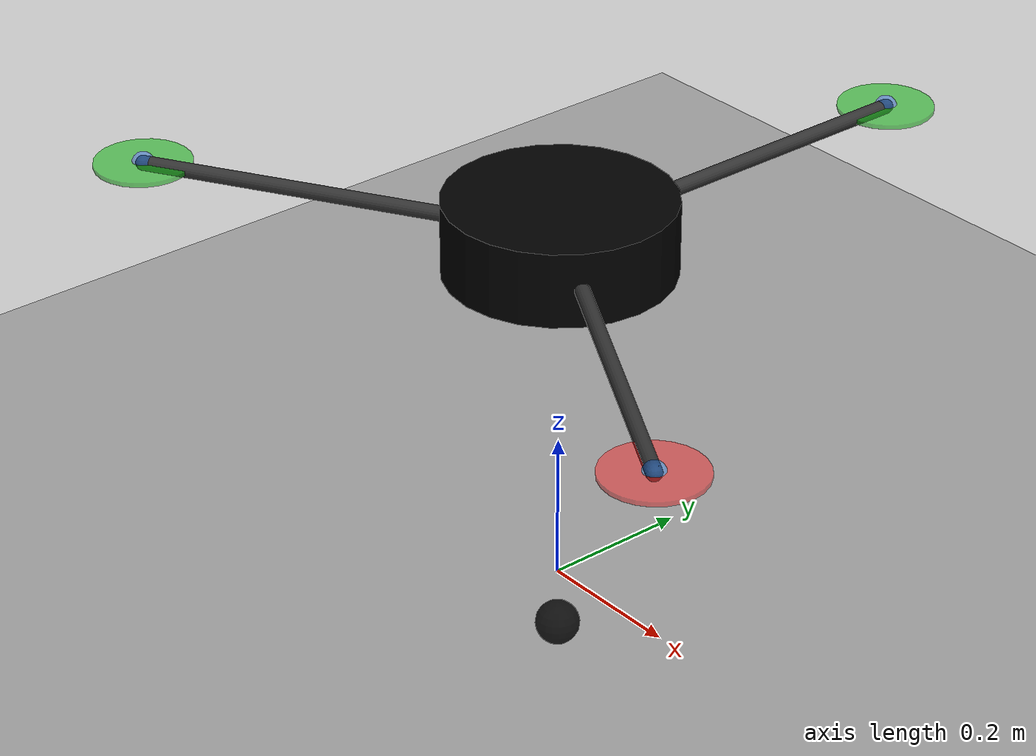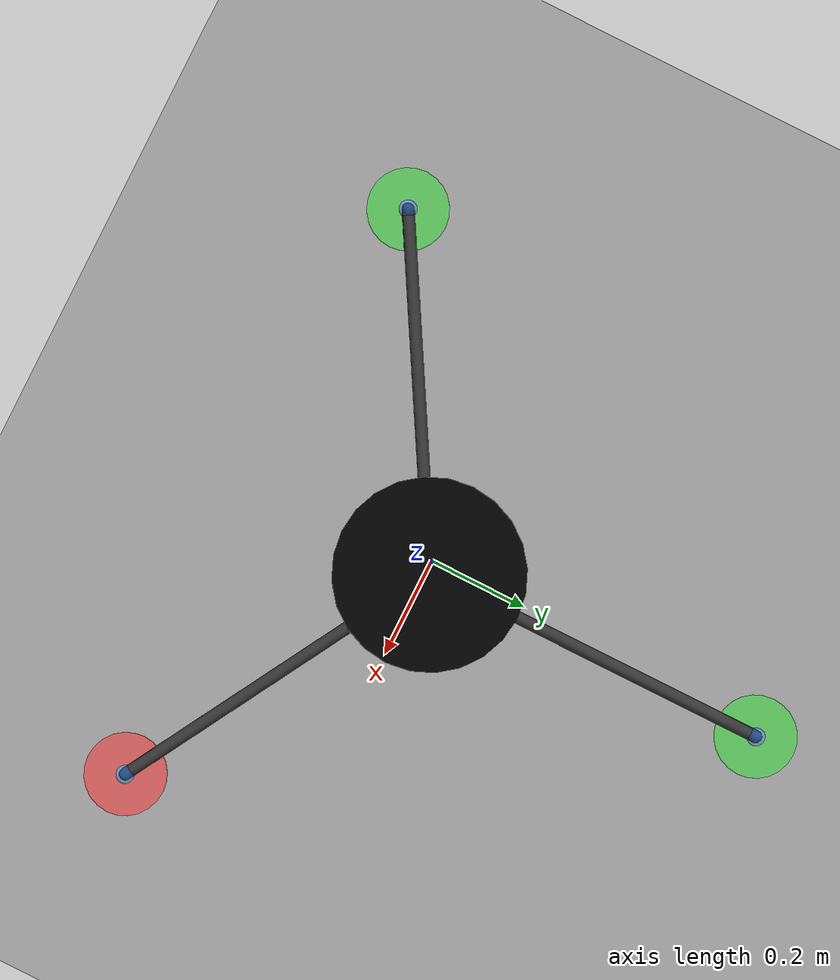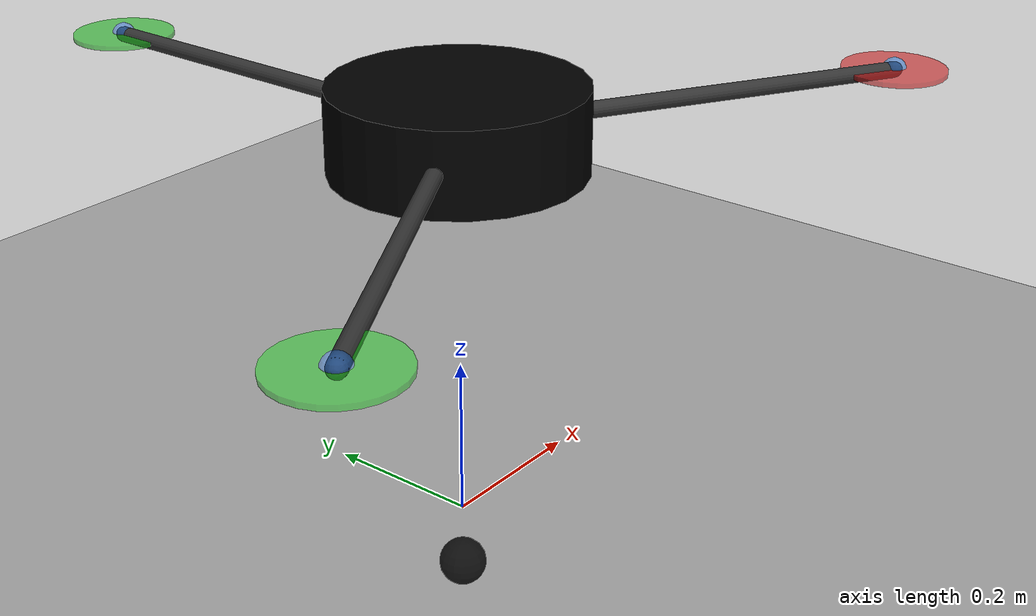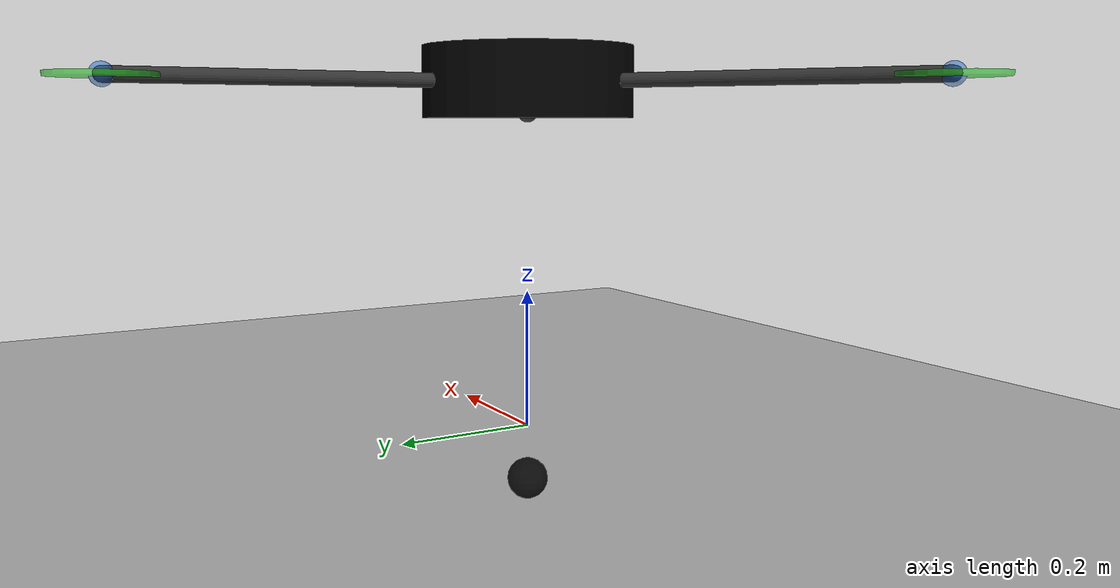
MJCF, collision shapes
<!-- Hopper Serial Equivalent Leg Model for MuJoCo -->
<mujoco model="hopper_serial">
  <compiler angle="radian" meshdir="meshes"/>

  <option timestep="0.001" gravity="0 0 -9.81" integrator="RK4">
    <flag warmstart="enable"/>
  </option>

  <visual>
    <global offwidth="2048" offheight="2048"/>
  </visual>

  <default>
    <joint armature="0.01" damping="0.1" limited="true"/>
    <geom contype="1" conaffinity="1" friction="1.0 0.005 0.0001"/>
    <motor ctrllimited="true"/>
  </default>

  <asset>
    <!-- 背景和地面纹理 -->
    <texture type="skybox" builtin="gradient" rgb1="0.3 0.5 0.7" rgb2="0 0 0" width="512" height="512"/>
    <texture name="plane_tex" type="2d" builtin="checker" rgb1="0.2 0.2 0.2" rgb2="0.3 0.3 0.3" width="512" height="512"/>
    <material name="plane_mat" texture="plane_tex" texrepeat="5 5" reflectance="0.1"/>

    <!-- 机器人材质 -->
    <material name="body_mat" rgba="0.9 0.9 0.9 1"/>
    <material name="leg_mat" rgba="0.7 0.7 0.7 1"/>
    <material name="foot_mat" rgba="0.8 0.2 0.2 1"/>
    <material name="prop_arm_mat" rgba="0.2 0.2 0.2 1"/>
    <material name="prop_disc_cw_mat" rgba="0.85 0.1 0.1 0.6"/>
    <material name="prop_disc_ccw_mat" rgba="0.1 0.75 0.1 0.6"/>

    <!-- 原始 STL mesh 文件 -->
    <mesh name="base_link_mesh" file="base_link.STL"/>
    <mesh name="leg_link_mesh" file="Leg_Link.STL"/>
    <mesh name="foot_link_mesh" file="Foot_Link.STL"/>
  </asset>

  <worldbody>
    <!-- Ground plane -->
    <geom name="ground" type="plane" size="10 10 0.1" material="plane_mat"/>

    <!-- Robot base (floating) -->
    <!-- 初始高度 0.5m，让机器人能够触地开始跳跃 -->
    <body name="base_link" pos="0 0 0.5">
      <freejoint name="root"/>

      <!-- IMU site on base -->
      <site name="imu_site" pos="0 0 0" size="0.01"/>

      <!-- Base inertial properties (exactly from Hopper URDF) -->
      <inertial pos="-0.000332 0.000002 -0.023132" mass="2.50681195566096"
                fullinertia="0.0233667280091328 0.023367930568101 0.0460329566307884 2.39896564964331e-05 2.13732387800745e-06 3.38974687864798e-08"/>

      <!-- Base visual (使用原始 STL mesh) -->
      <geom name="base_visual" type="mesh" mesh="base_link_mesh"
            material="body_mat" contype="0" conaffinity="0"/>

      <!-- Base collision (简化为圆柱体，提高仿真稳定性) -->
      <geom name="base_collision" type="cylinder" size="0.15 0.05" pos="0 0 0"
            rgba="0 0 0 0"/>

      <!-- ========== Propeller arms (visual only) ========== -->
      <!-- 三个对称布置的扶臂，与 Hopper4 中的三旋翼等效 -->
      <geom name="prop_arm_1" type="capsule" fromto="0 0 0 0.000317 0.569451 0"
            size="0.01" material="prop_arm_mat" contype="0" conaffinity="0"/>
      <geom name="prop_arm_2" type="capsule" fromto="0 0 0 0.493317 -0.284451 0"
            size="0.01" material="prop_arm_mat" contype="0" conaffinity="0"/>
      <geom name="prop_arm_3" type="capsule" fromto="0 0 0 -0.493634 -0.285 0"
            size="0.01" material="prop_arm_mat" contype="0" conaffinity="0"/>

      <!-- ========== Propeller discs (visual placeholders) ========== -->
      <geom name="prop_disc_1" type="cylinder" size="0.065 0.003"
            pos="0.000317 0.569451 0" material="prop_disc_ccw_mat" contype="0" conaffinity="0"/>
      <geom name="prop_disc_2" type="cylinder" size="0.065 0.003"
            pos="0.493317 -0.284451 0" material="prop_disc_cw_mat" contype="0" conaffinity="0"/>
      <geom name="prop_disc_3" type="cylinder" size="0.065 0.003"
            pos="-0.493634 -0.285 0" material="prop_disc_ccw_mat" contype="0" conaffinity="0"/>

      <!-- Propeller thrust reference sites -->
      <site name="prop_site_1" pos="0.000317 0.569451 0" size="0.015" rgba="0.1 0.4 0.8 0.5"/>
      <site name="prop_site_2" pos="0.493317 -0.284451 0" size="0.015" rgba="0.1 0.4 0.8 0.5"/>
      <site name="prop_site_3" pos="-0.493634 -0.285 0" size="0.015" rgba="0.1 0.4 0.8 0.5"/>

      <!-- Hip joint: Roll (around X axis) -->
      <!-- 从 URDF: origin xyz="0 0 -0.0416" -->
      <body name="base_roll_link" pos="0 0 -0.0416">
        <inertial pos="0 0 0" mass="0.06" diaginertia="9.6e-6 9.6e-6 9.6e-6"/>
        <joint name="Leg_Joint_Roll" type="hinge" axis="1 0 0"
               range="-1.0 1.0" damping="0.5"/>
        <geom name="roll_geom" type="sphere" size="0.015" rgba="0.3 0.3 0.3 1"/>

        <!-- Pitch joint (around Y axis) -->
        <body name="roll_pitch_link" pos="0 0 0">
          <inertial pos="0 0 0" mass="0.06" diaginertia="9.6e-6 9.6e-6 9.6e-6"/>
          <joint name="Leg_Joint_Pitch" type="hinge" axis="0 1 0"
                 range="-1.0 1.0" damping="0.5"/>
          <geom name="pitch_geom" type="sphere" size="0.015" rgba="0.3 0.3 0.3 1"/>

          <!-- pitch_leg_link (与 URDF 一致，添加中间链接) -->
          <body name="pitch_leg_link" pos="0 0 0">
            <inertial pos="0 0 0" mass="0.06" diaginertia="9.6e-6 9.6e-6 9.6e-6"/>
            <geom name="pitch_leg_geom" type="sphere" size="0.015" rgba="0.3 0.3 0.3 1"/>

            <!-- Prismatic joint: Leg extension (与 URDF 完全一致) -->
            <body name="Leg_Link" pos="0 0 0">
              <!-- 从 URDF: mass=0.376991118430775 kg, inertia -->
              <inertial pos="0 0 -0.2837" mass="0.376991118430775"
                        diaginertia="0.00724058566836107 0.00724058566836107 4.71238898038469e-06"/>
              <!-- Shift 关节（与 URDF 完全一致）-->
              <!-- axis="0 0 1": 正 Z 轴方向 -->
              <!-- range="0 0.4": shift=0 是最短，shift=0.4 是最长（伸展 40cm）-->
              <joint name="Leg_Joint_Shift" type="slide" axis="0 0 1"
                     range="0 0.4"
                     damping="25"
                     stiffness="1200"
                     springref="0.0"
                     ref="0"/>

            <!-- Leg visual (使用原始 STL mesh) -->
            <geom name="leg_visual" type="mesh" mesh="leg_link_mesh"
                  material="leg_mat" contype="0" conaffinity="0"/>

            <!-- Leg collision: 禁用，避免干扰脚的接触 -->
            <!-- 原来的圆柱体底端比脚还低，会先撞地 -->
            <geom name="leg_collision" type="cylinder" size="0.01 0.20"
                  pos="0 0 -0.20" contype="0" conaffinity="0" rgba="0 0 0 0"/>

            <!-- Foot -->
            <!-- 从 URDF: origin xyz="0 0 -0.5237" -->
            <body name="Foot_Link" pos="0 0 -0.5237">
              <!-- 从 URDF: mass=0.00835483868274579 kg -->
              <inertial pos="0 0 -0.009294" mass="0.00835483868274579"
                        diaginertia="6.20993807755469e-07 6.21007675260879e-07 9.48701641254357e-07"/>

              <!-- Foot visual (使用原始 STL mesh) -->
              <geom name="foot_visual" type="mesh" mesh="foot_link_mesh"
                    material="foot_mat" contype="0" conaffinity="0"/>

              <!-- Foot collision (球体，用于接触检测，完全透明) -->
              <geom name="foot_collision" type="sphere" size="0.03"
                    pos="0 0 -0.015" rgba="0 0 0 0"/>

              <!-- Foot contact site -->
              <site name="foot_site" pos="0 0 -0.03" size="0.01"/>
            </body>
          </body>
        </body>
        </body>
      </body>
    </body>
  </worldbody>

  <actuator>
    <!-- Joint actuators (与 Hopper_rl_t-master URDF effort 完全一致) -->
    <!-- Roll: 20 N·m, Pitch: 20 N·m, Shift: 50 N·m -->
    <motor name="roll_motor" joint="Leg_Joint_Roll" gear="1" ctrlrange="-20 20"/>
    <motor name="pitch_motor" joint="Leg_Joint_Pitch" gear="1" ctrlrange="-20 20"/>
    <!-- Increased shift actuation range for hopping (was -500..500). -->
    <motor name="shift_motor" joint="Leg_Joint_Shift" gear="1" ctrlrange="-2500 2500"/>

    <!-- Propeller thruster placeholders（用于可视化/调试） -->
  </actuator>

  <sensor>
    <!-- IMU sensors on base -->
    <accelerometer name="imu_accel" site="imu_site"/>
    <gyro name="imu_gyro" site="imu_site"/>
    <framequat name="imu_quat" objtype="body" objname="base_link"/>

    <!-- Joint sensors -->
    <jointpos name="roll_pos" joint="Leg_Joint_Roll"/>
    <jointpos name="pitch_pos" joint="Leg_Joint_Pitch"/>
    <jointpos name="shift_pos" joint="Leg_Joint_Shift"/>
    <jointvel name="roll_vel" joint="Leg_Joint_Roll"/>
    <jointvel name="pitch_vel" joint="Leg_Joint_Pitch"/>
    <jointvel name="shift_vel" joint="Leg_Joint_Shift"/>

    <!-- Foot contact -->
    <touch name="foot_touch" site="foot_site"/>
  </sensor>

</mujoco>
